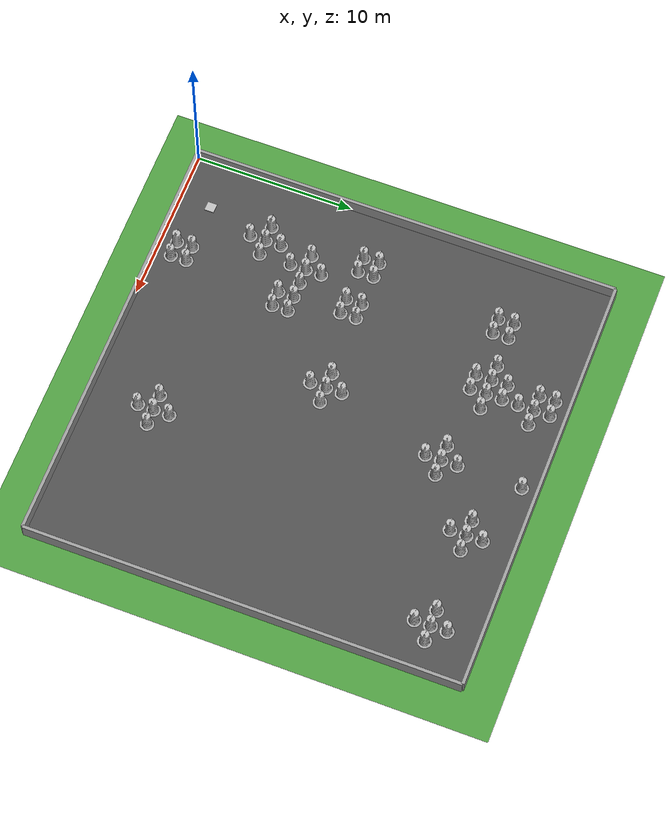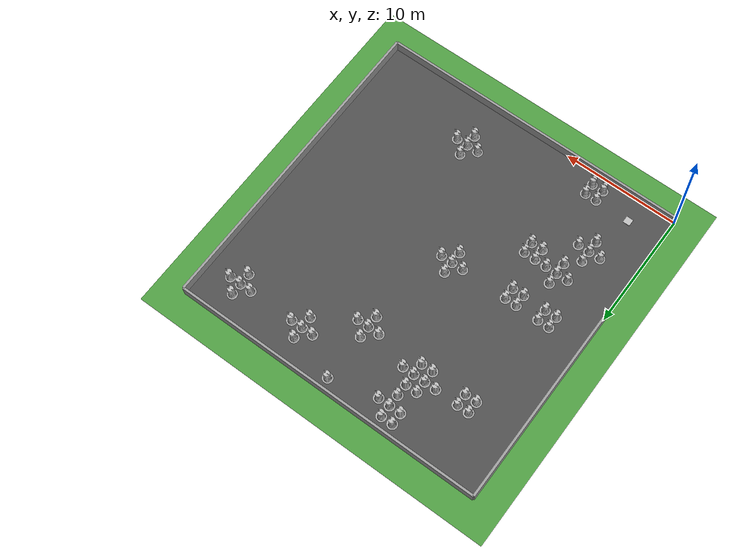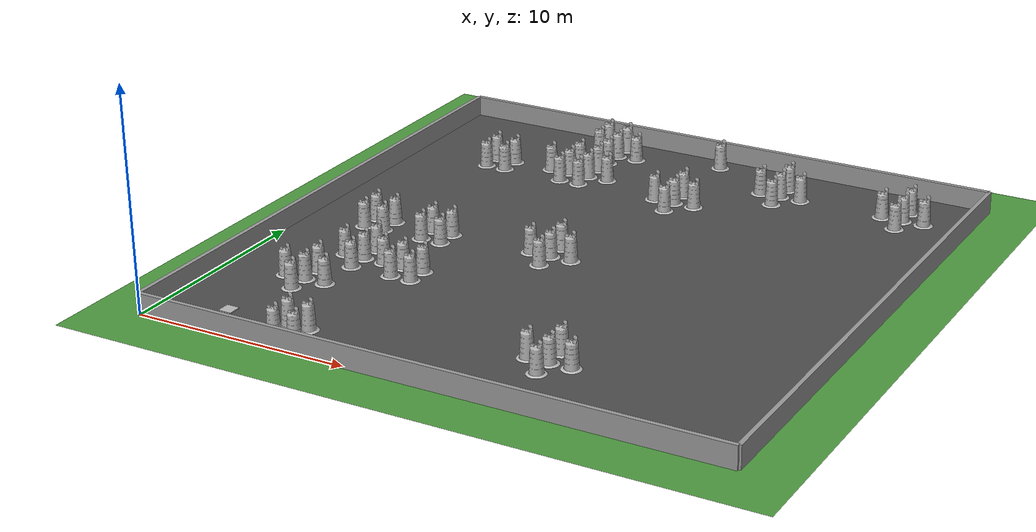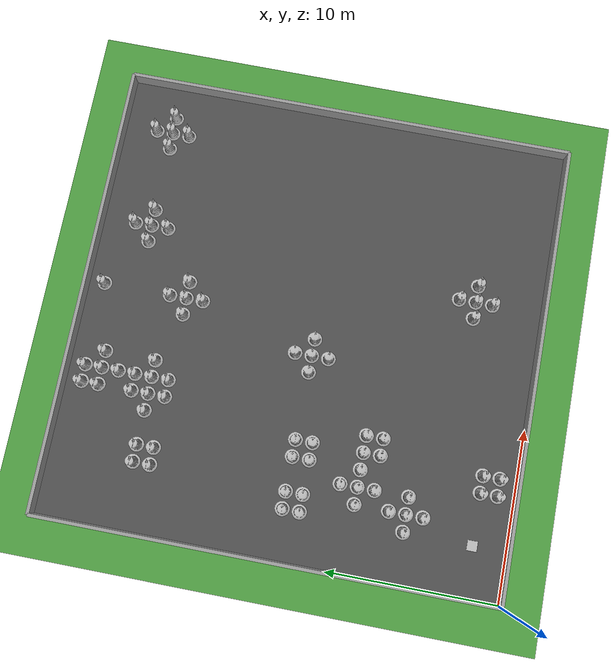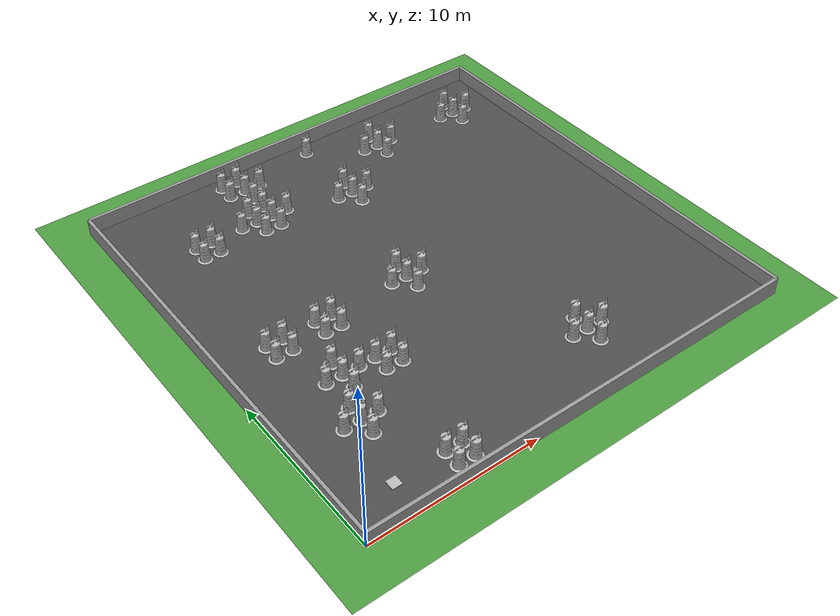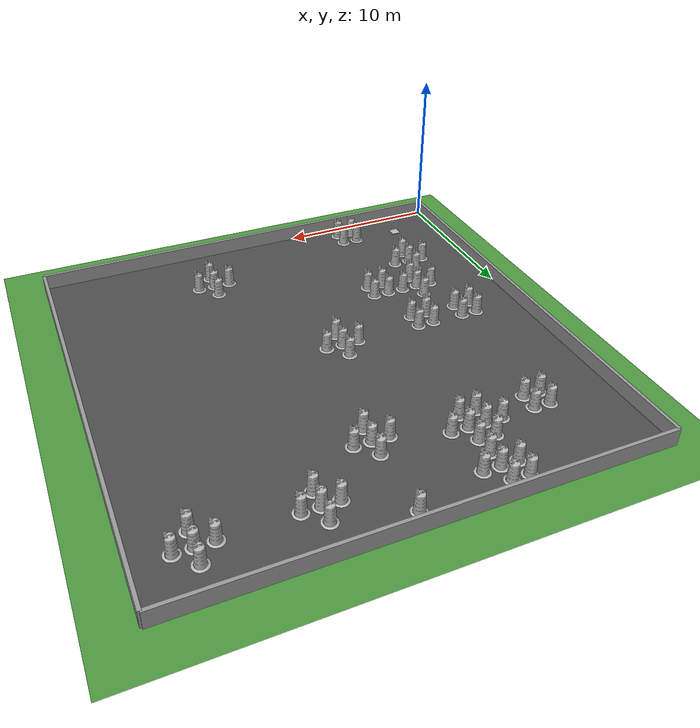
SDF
<sdf version="1.4">
 <world name="default">
  <model name="vrc_driving_terrain">
   <static>1</static>
   <link name="grass_plane">
    <visual name="visual_0">
     <cast_shadows>0</cast_shadows>
     <geometry><plane><normal>0 0 1</normal><size>150 150</size></plane></geometry>
     <material>
      <script>
       <uri>model://vrc_driving_terrain/materials/scripts</uri>
       <uri>model://vrc_driving_terrain/materials/textures</uri>
       <name>vrc/grass</name>
      </script>
     </material>
    </visual>
   </link>
   <pose>0 0 0.01 0 -0 0</pose>
  </model>
  <include><uri>model://ground_plane</uri></include>
  <include><uri>model://sun</uri></include>
  <plugin filename="librotors_gazebo_ros_interface_plugin.so" name="ros_interface_plugin"/>
  <spherical_coordinates>
   <surface_model>EARTH_WGS84</surface_model>
   <latitude_deg>47.3667</latitude_deg>
   <longitude_deg>8.5500</longitude_deg>
   <elevation>500.0</elevation>
   <heading_deg>0</heading_deg>
  </spherical_coordinates>
  <physics type="ode">
   <ode>
    <solver><type>quick</type><iters>1000</iters><sor>1.3</sor></solver>
    <constraints>
     <cfm>0</cfm>
     <erp>0.2</erp>
     <contact_max_correcting_vel>100</contact_max_correcting_vel>
     <contact_surface_layer>0.001</contact_surface_layer>
    </constraints>
   </ode>
   <max_step_size>0.01</max_step_size>
   <real_time_factor>1</real_time_factor>
   <real_time_update_rate>100</real_time_update_rate>
   <gravity>0 0 -9.8</gravity>
  </physics>
  <model name="box_target_green">
   <static>1</static>
   <link name="link">
    <pose>3 2 0 0 0 0</pose>
    <collision name="collision"><geometry><box><size>6 6 2</size></box></geometry></collision>
    <visual name="visual">
     <geometry>
      <mesh><uri>model://box_target_green/meshes/mesh.dae</uri><scale>0.1 0.1 0.1</scale></mesh>
     </geometry>
    </visual>
   </link>
  </model>
  <model name="grey_wall">
   <static>1</static>
   <link name="link">
    <visual name="visual">
     <cast_shadows>0</cast_shadows>
     <geometry><box><size>27 0.2 2</size></box></geometry>
     <material>
      <script>
       <uri>model://grey_wall/materials/scripts</uri>
       <uri>model://grey_wall/materials/textures</uri>
       <name>vrc/grey_wall</name>
      </script>
     </material>
    </visual>
   </link>
   <pose>13.5 0 0 0 0 0</pose>
  </model>
  <model name="grey_wall">
   <static>1</static>
   <link name="link">
    <visual name="visual">
     <cast_shadows>0</cast_shadows>
     <geometry><box><size>27 0.2 2</size></box></geometry>
     <material>
      <script>
       <uri>model://grey_wall/materials/scripts</uri>
       <uri>model://grey_wall/materials/textures</uri>
       <name>vrc/grey_wall</name>
      </script>
     </material>
    </visual>
   </link>
   <pose>0 13.5 0 0 0 1.57079632679</pose>
  </model>
  <model name="grey_wall">
   <static>1</static>
   <link name="link">
    <visual name="visual">
     <cast_shadows>0</cast_shadows>
     <geometry><box><size>27 0.2 2</size></box></geometry>
     <material>
      <script>
       <uri>model://grey_wall/materials/scripts</uri>
       <uri>model://grey_wall/materials/textures</uri>
       <name>vrc/grey_wall</name>
      </script>
     </material>
    </visual>
   </link>
   <pose>27 13.5 0 0 0 -1.57079632679</pose>
  </model>
  <model name="grey_wall">
   <static>1</static>
   <link name="link">
    <visual name="visual">
     <cast_shadows>0</cast_shadows>
     <geometry><box><size>27 0.2 2</size></box></geometry>
     <material>
      <script>
       <uri>model://grey_wall/materials/scripts</uri>
       <uri>model://grey_wall/materials/textures</uri>
       <name>vrc/grey_wall</name>
      </script>
     </material>
    </visual>
   </link>
   <pose>13.5 27 0 0 0 3.14159265359</pose>
  </model>
  <model name="asphalt_plane">
   <static>1</static>
   <link name="link">
    <visual name="visual">
     <cast_shadows>0</cast_shadows>
     <geometry><box><size>27 27 0.1</size></box></geometry>
     <material>
      <script>
       <uri>model://asphalt_plane/materials/scripts</uri>
       <uri>model://asphalt_plane/materials/textures</uri>
       <name>vrc/asphalt</name>
      </script>
     </material>
    </visual>
   </link>
   <pose>13.5 13.5 0 0 0 0</pose>
  </model>
  <model name="Construction Barrel">
   <link name="link">
    <collision name="collision">
     <geometry>
      <mesh><uri>model://construction_barrel/meshes/construction_barrel.dae</uri><scale>1 1 1</scale></mesh>
     </geometry>
    </collision>
    <visual name="visual">
     <geometry><mesh><uri>model://construction_barrel/meshes/construction_barrel.dae</uri></mesh></geometry>
    </visual>
   </link>
   <pose>3 6 0 0 0 0</pose>
   <static>1</static>
  </model>
  <model name="Construction Barrel">
   <link name="link">
    <collision name="collision">
     <geometry>
      <mesh><uri>model://construction_barrel/meshes/construction_barrel.dae</uri><scale>1 1 1</scale></mesh>
     </geometry>
    </collision>
    <visual name="visual">
     <geometry><mesh><uri>model://construction_barrel/meshes/construction_barrel.dae</uri></mesh></geometry>
    </visual>
   </link>
   <pose>3 12 0 0 0 0</pose>
   <static>1</static>
  </model>
  <model name="Construction Barrel">
   <link name="link">
    <collision name="collision">
     <geometry>
      <mesh><uri>model://construction_barrel/meshes/construction_barrel.dae</uri><scale>1 1 1</scale></mesh>
     </geometry>
    </collision>
    <visual name="visual">
     <geometry><mesh><uri>model://construction_barrel/meshes/construction_barrel.dae</uri></mesh></geometry>
    </visual>
   </link>
   <pose>3 13 0 0 0 0</pose>
   <static>1</static>
  </model>
  <model name="Construction Barrel">
   <link name="link">
    <collision name="collision">
     <geometry>
      <mesh><uri>model://construction_barrel/meshes/construction_barrel.dae</uri><scale>1 1 1</scale></mesh>
     </geometry>
    </collision>
    <visual name="visual">
     <geometry><mesh><uri>model://construction_barrel/meshes/construction_barrel.dae</uri></mesh></geometry>
    </visual>
   </link>
   <pose>4 5 0 0 0 0</pose>
   <static>1</static>
  </model>
  <model name="Construction Barrel">
   <link name="link">
    <collision name="collision">
     <geometry>
      <mesh><uri>model://construction_barrel/meshes/construction_barrel.dae</uri><scale>1 1 1</scale></mesh>
     </geometry>
    </collision>
    <visual name="visual">
     <geometry><mesh><uri>model://construction_barrel/meshes/construction_barrel.dae</uri></mesh></geometry>
    </visual>
   </link>
   <pose>4 6 0 0 0 0</pose>
   <static>1</static>
  </model>
  <model name="Construction Barrel">
   <link name="link">
    <collision name="collision">
     <geometry>
      <mesh><uri>model://construction_barrel/meshes/construction_barrel.dae</uri><scale>1 1 1</scale></mesh>
     </geometry>
    </collision>
    <visual name="visual">
     <geometry><mesh><uri>model://construction_barrel/meshes/construction_barrel.dae</uri></mesh></geometry>
    </visual>
   </link>
   <pose>4 7 0 0 0 0</pose>
   <static>1</static>
  </model>
  <model name="Construction Barrel">
   <link name="link">
    <collision name="collision">
     <geometry>
      <mesh><uri>model://construction_barrel/meshes/construction_barrel.dae</uri><scale>1 1 1</scale></mesh>
     </geometry>
    </collision>
    <visual name="visual">
     <geometry><mesh><uri>model://construction_barrel/meshes/construction_barrel.dae</uri></mesh></geometry>
    </visual>
   </link>
   <pose>4 9 0 0 0 0</pose>
   <static>1</static>
  </model>
  <model name="Construction Barrel">
   <link name="link">
    <collision name="collision">
     <geometry>
      <mesh><uri>model://construction_barrel/meshes/construction_barrel.dae</uri><scale>1 1 1</scale></mesh>
     </geometry>
    </collision>
    <visual name="visual">
     <geometry><mesh><uri>model://construction_barrel/meshes/construction_barrel.dae</uri></mesh></geometry>
    </visual>
   </link>
   <pose>4 12 0 0 0 0</pose>
   <static>1</static>
  </model>
  <model name="Construction Barrel">
   <link name="link">
    <collision name="collision">
     <geometry>
      <mesh><uri>model://construction_barrel/meshes/construction_barrel.dae</uri><scale>1 1 1</scale></mesh>
     </geometry>
    </collision>
    <visual name="visual">
     <geometry><mesh><uri>model://construction_barrel/meshes/construction_barrel.dae</uri></mesh></geometry>
    </visual>
   </link>
   <pose>4 13 0 0 0 0</pose>
   <static>1</static>
  </model>
  <model name="Construction Barrel">
   <link name="link">
    <collision name="collision">
     <geometry>
      <mesh><uri>model://construction_barrel/meshes/construction_barrel.dae</uri><scale>1 1 1</scale></mesh>
     </geometry>
    </collision>
    <visual name="visual">
     <geometry><mesh><uri>model://construction_barrel/meshes/construction_barrel.dae</uri></mesh></geometry>
    </visual>
   </link>
   <pose>4 21 0 0 0 0</pose>
   <static>1</static>
  </model>
  <model name="Construction Barrel">
   <link name="link">
    <collision name="collision">
     <geometry>
      <mesh><uri>model://construction_barrel/meshes/construction_barrel.dae</uri><scale>1 1 1</scale></mesh>
     </geometry>
    </collision>
    <visual name="visual">
     <geometry><mesh><uri>model://construction_barrel/meshes/construction_barrel.dae</uri></mesh></geometry>
    </visual>
   </link>
   <pose>4 22 0 0 0 0</pose>
   <static>1</static>
  </model>
  <model name="Construction Barrel">
   <link name="link">
    <collision name="collision">
     <geometry>
      <mesh><uri>model://construction_barrel/meshes/construction_barrel.dae</uri><scale>1 1 1</scale></mesh>
     </geometry>
    </collision>
    <visual name="visual">
     <geometry><mesh><uri>model://construction_barrel/meshes/construction_barrel.dae</uri></mesh></geometry>
    </visual>
   </link>
   <pose>5 6 0 0 0 0</pose>
   <static>1</static>
  </model>
  <model name="Construction Barrel">
   <link name="link">
    <collision name="collision">
     <geometry>
      <mesh><uri>model://construction_barrel/meshes/construction_barrel.dae</uri><scale>1 1 1</scale></mesh>
     </geometry>
    </collision>
    <visual name="visual">
     <geometry><mesh><uri>model://construction_barrel/meshes/construction_barrel.dae</uri></mesh></geometry>
    </visual>
   </link>
   <pose>5 8 0 0 0 0</pose>
   <static>1</static>
  </model>
  <model name="Construction Barrel">
   <link name="link">
    <collision name="collision">
     <geometry>
      <mesh><uri>model://construction_barrel/meshes/construction_barrel.dae</uri><scale>1 1 1</scale></mesh>
     </geometry>
    </collision>
    <visual name="visual">
     <geometry><mesh><uri>model://construction_barrel/meshes/construction_barrel.dae</uri></mesh></geometry>
    </visual>
   </link>
   <pose>5 9 0 0 0 0</pose>
   <static>1</static>
  </model>
  <model name="Construction Barrel">
   <link name="link">
    <collision name="collision">
     <geometry>
      <mesh><uri>model://construction_barrel/meshes/construction_barrel.dae</uri><scale>1 1 1</scale></mesh>
     </geometry>
    </collision>
    <visual name="visual">
     <geometry><mesh><uri>model://construction_barrel/meshes/construction_barrel.dae</uri></mesh></geometry>
    </visual>
   </link>
   <pose>5 10 0 0 0 0</pose>
   <static>1</static>
  </model>
  <model name="Construction Barrel">
   <link name="link">
    <collision name="collision">
     <geometry>
      <mesh><uri>model://construction_barrel/meshes/construction_barrel.dae</uri><scale>1 1 1</scale></mesh>
     </geometry>
    </collision>
    <visual name="visual">
     <geometry><mesh><uri>model://construction_barrel/meshes/construction_barrel.dae</uri></mesh></geometry>
    </visual>
   </link>
   <pose>5 21 0 0 0 0</pose>
   <static>1</static>
  </model>
  <model name="Construction Barrel">
   <link name="link">
    <collision name="collision">
     <geometry>
      <mesh><uri>model://construction_barrel/meshes/construction_barrel.dae</uri><scale>1 1 1</scale></mesh>
     </geometry>
    </collision>
    <visual name="visual">
     <geometry><mesh><uri>model://construction_barrel/meshes/construction_barrel.dae</uri></mesh></geometry>
    </visual>
   </link>
   <pose>5 22 0 0 0 0</pose>
   <static>1</static>
  </model>
  <model name="Construction Barrel">
   <link name="link">
    <collision name="collision">
     <geometry>
      <mesh><uri>model://construction_barrel/meshes/construction_barrel.dae</uri><scale>1 1 1</scale></mesh>
     </geometry>
    </collision>
    <visual name="visual">
     <geometry><mesh><uri>model://construction_barrel/meshes/construction_barrel.dae</uri></mesh></geometry>
    </visual>
   </link>
   <pose>6 1 0 0 0 0</pose>
   <static>1</static>
  </model>
  <model name="Construction Barrel">
   <link name="link">
    <collision name="collision">
     <geometry>
      <mesh><uri>model://construction_barrel/meshes/construction_barrel.dae</uri><scale>1 1 1</scale></mesh>
     </geometry>
    </collision>
    <visual name="visual">
     <geometry><mesh><uri>model://construction_barrel/meshes/construction_barrel.dae</uri></mesh></geometry>
    </visual>
   </link>
   <pose>6 2 0 0 0 0</pose>
   <static>1</static>
  </model>
  <model name="Construction Barrel">
   <link name="link">
    <collision name="collision">
     <geometry>
      <mesh><uri>model://construction_barrel/meshes/construction_barrel.dae</uri><scale>1 1 1</scale></mesh>
     </geometry>
    </collision>
    <visual name="visual">
     <geometry><mesh><uri>model://construction_barrel/meshes/construction_barrel.dae</uri></mesh></geometry>
    </visual>
   </link>
   <pose>6 9 0 0 0 0</pose>
   <static>1</static>
  </model>
  <model name="Construction Barrel">
   <link name="link">
    <collision name="collision">
     <geometry>
      <mesh><uri>model://construction_barrel/meshes/construction_barrel.dae</uri><scale>1 1 1</scale></mesh>
     </geometry>
    </collision>
    <visual name="visual">
     <geometry><mesh><uri>model://construction_barrel/meshes/construction_barrel.dae</uri></mesh></geometry>
    </visual>
   </link>
   <pose>6 12 0 0 0 0</pose>
   <static>1</static>
  </model>
  <model name="Construction Barrel">
   <link name="link">
    <collision name="collision">
     <geometry>
      <mesh><uri>model://construction_barrel/meshes/construction_barrel.dae</uri><scale>1 1 1</scale></mesh>
     </geometry>
    </collision>
    <visual name="visual">
     <geometry><mesh><uri>model://construction_barrel/meshes/construction_barrel.dae</uri></mesh></geometry>
    </visual>
   </link>
   <pose>6 13 0 0 0 0</pose>
   <static>1</static>
  </model>
  <model name="Construction Barrel">
   <link name="link">
    <collision name="collision">
     <geometry>
      <mesh><uri>model://construction_barrel/meshes/construction_barrel.dae</uri><scale>1 1 1</scale></mesh>
     </geometry>
    </collision>
    <visual name="visual">
     <geometry><mesh><uri>model://construction_barrel/meshes/construction_barrel.dae</uri></mesh></geometry>
    </visual>
   </link>
   <pose>7 1 0 0 0 0</pose>
   <static>1</static>
  </model>
  <model name="Construction Barrel">
   <link name="link">
    <collision name="collision">
     <geometry>
      <mesh><uri>model://construction_barrel/meshes/construction_barrel.dae</uri><scale>1 1 1</scale></mesh>
     </geometry>
    </collision>
    <visual name="visual">
     <geometry><mesh><uri>model://construction_barrel/meshes/construction_barrel.dae</uri></mesh></geometry>
    </visual>
   </link>
   <pose>7 2 0 0 0 0</pose>
   <static>1</static>
  </model>
  <model name="Construction Barrel">
   <link name="link">
    <collision name="collision">
     <geometry>
      <mesh><uri>model://construction_barrel/meshes/construction_barrel.dae</uri><scale>1 1 1</scale></mesh>
     </geometry>
    </collision>
    <visual name="visual">
     <geometry><mesh><uri>model://construction_barrel/meshes/construction_barrel.dae</uri></mesh></geometry>
    </visual>
   </link>
   <pose>7 8 0 0 0 0</pose>
   <static>1</static>
  </model>
  <model name="Construction Barrel">
   <link name="link">
    <collision name="collision">
     <geometry>
      <mesh><uri>model://construction_barrel/meshes/construction_barrel.dae</uri><scale>1 1 1</scale></mesh>
     </geometry>
    </collision>
    <visual name="visual">
     <geometry><mesh><uri>model://construction_barrel/meshes/construction_barrel.dae</uri></mesh></geometry>
    </visual>
   </link>
   <pose>7 9 0 0 0 0</pose>
   <static>1</static>
  </model>
  <model name="Construction Barrel">
   <link name="link">
    <collision name="collision">
     <geometry>
      <mesh><uri>model://construction_barrel/meshes/construction_barrel.dae</uri><scale>1 1 1</scale></mesh>
     </geometry>
    </collision>
    <visual name="visual">
     <geometry><mesh><uri>model://construction_barrel/meshes/construction_barrel.dae</uri></mesh></geometry>
    </visual>
   </link>
   <pose>7 12 0 0 0 0</pose>
   <static>1</static>
  </model>
  <model name="Construction Barrel">
   <link name="link">
    <collision name="collision">
     <geometry>
      <mesh><uri>model://construction_barrel/meshes/construction_barrel.dae</uri><scale>1 1 1</scale></mesh>
     </geometry>
    </collision>
    <visual name="visual">
     <geometry><mesh><uri>model://construction_barrel/meshes/construction_barrel.dae</uri></mesh></geometry>
    </visual>
   </link>
   <pose>7 13 0 0 0 0</pose>
   <static>1</static>
  </model>
  <model name="Construction Barrel">
   <link name="link">
    <collision name="collision">
     <geometry>
      <mesh><uri>model://construction_barrel/meshes/construction_barrel.dae</uri><scale>1 1 1</scale></mesh>
     </geometry>
    </collision>
    <visual name="visual">
     <geometry><mesh><uri>model://construction_barrel/meshes/construction_barrel.dae</uri></mesh></geometry>
    </visual>
   </link>
   <pose>7 22 0 0 0 0</pose>
   <static>1</static>
  </model>
  <model name="Construction Barrel">
   <link name="link">
    <collision name="collision">
     <geometry>
      <mesh><uri>model://construction_barrel/meshes/construction_barrel.dae</uri><scale>1 1 1</scale></mesh>
     </geometry>
    </collision>
    <visual name="visual">
     <geometry><mesh><uri>model://construction_barrel/meshes/construction_barrel.dae</uri></mesh></geometry>
    </visual>
   </link>
   <pose>8 8 0 0 0 0</pose>
   <static>1</static>
  </model>
  <model name="Construction Barrel">
   <link name="link">
    <collision name="collision">
     <geometry>
      <mesh><uri>model://construction_barrel/meshes/construction_barrel.dae</uri><scale>1 1 1</scale></mesh>
     </geometry>
    </collision>
    <visual name="visual">
     <geometry><mesh><uri>model://construction_barrel/meshes/construction_barrel.dae</uri></mesh></geometry>
    </visual>
   </link>
   <pose>8 9 0 0 0 0</pose>
   <static>1</static>
  </model>
  <model name="Construction Barrel">
   <link name="link">
    <collision name="collision">
     <geometry>
      <mesh><uri>model://construction_barrel/meshes/construction_barrel.dae</uri><scale>1 1 1</scale></mesh>
     </geometry>
    </collision>
    <visual name="visual">
     <geometry><mesh><uri>model://construction_barrel/meshes/construction_barrel.dae</uri></mesh></geometry>
    </visual>
   </link>
   <pose>8 21 0 0 0 0</pose>
   <static>1</static>
  </model>
  <model name="Construction Barrel">
   <link name="link">
    <collision name="collision">
     <geometry>
      <mesh><uri>model://construction_barrel/meshes/construction_barrel.dae</uri><scale>1 1 1</scale></mesh>
     </geometry>
    </collision>
    <visual name="visual">
     <geometry><mesh><uri>model://construction_barrel/meshes/construction_barrel.dae</uri></mesh></geometry>
    </visual>
   </link>
   <pose>8 22 0 0 0 0</pose>
   <static>1</static>
  </model>
  <model name="Construction Barrel">
   <link name="link">
    <collision name="collision">
     <geometry>
      <mesh><uri>model://construction_barrel/meshes/construction_barrel.dae</uri><scale>1 1 1</scale></mesh>
     </geometry>
    </collision>
    <visual name="visual">
     <geometry><mesh><uri>model://construction_barrel/meshes/construction_barrel.dae</uri></mesh></geometry>
    </visual>
   </link>
   <pose>8 23 0 0 0 0</pose>
   <static>1</static>
  </model>
  <model name="Construction Barrel">
   <link name="link">
    <collision name="collision">
     <geometry>
      <mesh><uri>model://construction_barrel/meshes/construction_barrel.dae</uri><scale>1 1 1</scale></mesh>
     </geometry>
    </collision>
    <visual name="visual">
     <geometry><mesh><uri>model://construction_barrel/meshes/construction_barrel.dae</uri></mesh></geometry>
    </visual>
   </link>
   <pose>8 25 0 0 0 0</pose>
   <static>1</static>
  </model>
  <model name="Construction Barrel">
   <link name="link">
    <collision name="collision">
     <geometry>
      <mesh><uri>model://construction_barrel/meshes/construction_barrel.dae</uri><scale>1 1 1</scale></mesh>
     </geometry>
    </collision>
    <visual name="visual">
     <geometry><mesh><uri>model://construction_barrel/meshes/construction_barrel.dae</uri></mesh></geometry>
    </visual>
   </link>
   <pose>8 26 0 0 0 0</pose>
   <static>1</static>
  </model>
  <model name="Construction Barrel">
   <link name="link">
    <collision name="collision">
     <geometry>
      <mesh><uri>model://construction_barrel/meshes/construction_barrel.dae</uri><scale>1 1 1</scale></mesh>
     </geometry>
    </collision>
    <visual name="visual">
     <geometry><mesh><uri>model://construction_barrel/meshes/construction_barrel.dae</uri></mesh></geometry>
    </visual>
   </link>
   <pose>9 21 0 0 0 0</pose>
   <static>1</static>
  </model>
  <model name="Construction Barrel">
   <link name="link">
    <collision name="collision">
     <geometry>
      <mesh><uri>model://construction_barrel/meshes/construction_barrel.dae</uri><scale>1 1 1</scale></mesh>
     </geometry>
    </collision>
    <visual name="visual">
     <geometry><mesh><uri>model://construction_barrel/meshes/construction_barrel.dae</uri></mesh></geometry>
    </visual>
   </link>
   <pose>9 22 0 0 0 0</pose>
   <static>1</static>
  </model>
  <model name="Construction Barrel">
   <link name="link">
    <collision name="collision">
     <geometry>
      <mesh><uri>model://construction_barrel/meshes/construction_barrel.dae</uri><scale>1 1 1</scale></mesh>
     </geometry>
    </collision>
    <visual name="visual">
     <geometry><mesh><uri>model://construction_barrel/meshes/construction_barrel.dae</uri></mesh></geometry>
    </visual>
   </link>
   <pose>9 23 0 0 0 0</pose>
   <static>1</static>
  </model>
  <model name="Construction Barrel">
   <link name="link">
    <collision name="collision">
     <geometry>
      <mesh><uri>model://construction_barrel/meshes/construction_barrel.dae</uri><scale>1 1 1</scale></mesh>
     </geometry>
    </collision>
    <visual name="visual">
     <geometry><mesh><uri>model://construction_barrel/meshes/construction_barrel.dae</uri></mesh></geometry>
    </visual>
   </link>
   <pose>9 24 0 0 0 0</pose>
   <static>1</static>
  </model>
  <model name="Construction Barrel">
   <link name="link">
    <collision name="collision">
     <geometry>
      <mesh><uri>model://construction_barrel/meshes/construction_barrel.dae</uri><scale>1 1 1</scale></mesh>
     </geometry>
    </collision>
    <visual name="visual">
     <geometry><mesh><uri>model://construction_barrel/meshes/construction_barrel.dae</uri></mesh></geometry>
    </visual>
   </link>
   <pose>9 25 0 0 0 0</pose>
   <static>1</static>
  </model>
  <model name="Construction Barrel">
   <link name="link">
    <collision name="collision">
     <geometry>
      <mesh><uri>model://construction_barrel/meshes/construction_barrel.dae</uri><scale>1 1 1</scale></mesh>
     </geometry>
    </collision>
    <visual name="visual">
     <geometry><mesh><uri>model://construction_barrel/meshes/construction_barrel.dae</uri></mesh></geometry>
    </visual>
   </link>
   <pose>9 26 0 0 0 0</pose>
   <static>1</static>
  </model>
  <model name="Construction Barrel">
   <link name="link">
    <collision name="collision">
     <geometry>
      <mesh><uri>model://construction_barrel/meshes/construction_barrel.dae</uri><scale>1 1 1</scale></mesh>
     </geometry>
    </collision>
    <visual name="visual">
     <geometry><mesh><uri>model://construction_barrel/meshes/construction_barrel.dae</uri></mesh></geometry>
    </visual>
   </link>
   <pose>10 22 0 0 0 0</pose>
   <static>1</static>
  </model>
  <model name="Construction Barrel">
   <link name="link">
    <collision name="collision">
     <geometry>
      <mesh><uri>model://construction_barrel/meshes/construction_barrel.dae</uri><scale>1 1 1</scale></mesh>
     </geometry>
    </collision>
    <visual name="visual">
     <geometry><mesh><uri>model://construction_barrel/meshes/construction_barrel.dae</uri></mesh></geometry>
    </visual>
   </link>
   <pose>10 25 0 0 0 0</pose>
   <static>1</static>
  </model>
  <model name="Construction Barrel">
   <link name="link">
    <collision name="collision">
     <geometry>
      <mesh><uri>model://construction_barrel/meshes/construction_barrel.dae</uri><scale>1 1 1</scale></mesh>
     </geometry>
    </collision>
    <visual name="visual">
     <geometry><mesh><uri>model://construction_barrel/meshes/construction_barrel.dae</uri></mesh></geometry>
    </visual>
   </link>
   <pose>11 13 0 0 0 0</pose>
   <static>1</static>
  </model>
  <model name="Construction Barrel">
   <link name="link">
    <collision name="collision">
     <geometry>
      <mesh><uri>model://construction_barrel/meshes/construction_barrel.dae</uri><scale>1 1 1</scale></mesh>
     </geometry>
    </collision>
    <visual name="visual">
     <geometry><mesh><uri>model://construction_barrel/meshes/construction_barrel.dae</uri></mesh></geometry>
    </visual>
   </link>
   <pose>12 12 0 0 0 0</pose>
   <static>1</static>
  </model>
  <model name="Construction Barrel">
   <link name="link">
    <collision name="collision">
     <geometry>
      <mesh><uri>model://construction_barrel/meshes/construction_barrel.dae</uri><scale>1 1 1</scale></mesh>
     </geometry>
    </collision>
    <visual name="visual">
     <geometry><mesh><uri>model://construction_barrel/meshes/construction_barrel.dae</uri></mesh></geometry>
    </visual>
   </link>
   <pose>12 13 0 0 0 0</pose>
   <static>1</static>
  </model>
  <model name="Construction Barrel">
   <link name="link">
    <collision name="collision">
     <geometry>
      <mesh><uri>model://construction_barrel/meshes/construction_barrel.dae</uri><scale>1 1 1</scale></mesh>
     </geometry>
    </collision>
    <visual name="visual">
     <geometry><mesh><uri>model://construction_barrel/meshes/construction_barrel.dae</uri></mesh></geometry>
    </visual>
   </link>
   <pose>12 14 0 0 0 0</pose>
   <static>1</static>
  </model>
  <model name="Construction Barrel">
   <link name="link">
    <collision name="collision">
     <geometry>
      <mesh><uri>model://construction_barrel/meshes/construction_barrel.dae</uri><scale>1 1 1</scale></mesh>
     </geometry>
    </collision>
    <visual name="visual">
     <geometry><mesh><uri>model://construction_barrel/meshes/construction_barrel.dae</uri></mesh></geometry>
    </visual>
   </link>
   <pose>13 13 0 0 0 0</pose>
   <static>1</static>
  </model>
  <model name="Construction Barrel">
   <link name="link">
    <collision name="collision">
     <geometry>
      <mesh><uri>model://construction_barrel/meshes/construction_barrel.dae</uri><scale>1 1 1</scale></mesh>
     </geometry>
    </collision>
    <visual name="visual">
     <geometry><mesh><uri>model://construction_barrel/meshes/construction_barrel.dae</uri></mesh></geometry>
    </visual>
   </link>
   <pose>13 21 0 0 0 0</pose>
   <static>1</static>
  </model>
  <model name="Construction Barrel">
   <link name="link">
    <collision name="collision">
     <geometry>
      <mesh><uri>model://construction_barrel/meshes/construction_barrel.dae</uri><scale>1 1 1</scale></mesh>
     </geometry>
    </collision>
    <visual name="visual">
     <geometry><mesh><uri>model://construction_barrel/meshes/construction_barrel.dae</uri></mesh></geometry>
    </visual>
   </link>
   <pose>14 20 0 0 0 0</pose>
   <static>1</static>
  </model>
  <model name="Construction Barrel">
   <link name="link">
    <collision name="collision">
     <geometry>
      <mesh><uri>model://construction_barrel/meshes/construction_barrel.dae</uri><scale>1 1 1</scale></mesh>
     </geometry>
    </collision>
    <visual name="visual">
     <geometry><mesh><uri>model://construction_barrel/meshes/construction_barrel.dae</uri></mesh></geometry>
    </visual>
   </link>
   <pose>14 21 0 0 0 0</pose>
   <static>1</static>
  </model>
  <model name="Construction Barrel">
   <link name="link">
    <collision name="collision">
     <geometry>
      <mesh><uri>model://construction_barrel/meshes/construction_barrel.dae</uri><scale>1 1 1</scale></mesh>
     </geometry>
    </collision>
    <visual name="visual">
     <geometry><mesh><uri>model://construction_barrel/meshes/construction_barrel.dae</uri></mesh></geometry>
    </visual>
   </link>
   <pose>14 22 0 0 0 0</pose>
   <static>1</static>
  </model>
  <model name="Construction Barrel">
   <link name="link">
    <collision name="collision">
     <geometry>
      <mesh><uri>model://construction_barrel/meshes/construction_barrel.dae</uri><scale>1 1 1</scale></mesh>
     </geometry>
    </collision>
    <visual name="visual">
     <geometry><mesh><uri>model://construction_barrel/meshes/construction_barrel.dae</uri></mesh></geometry>
    </visual>
   </link>
   <pose>14 26 0 0 0 0</pose>
   <static>1</static>
  </model>
  <model name="Construction Barrel">
   <link name="link">
    <collision name="collision">
     <geometry>
      <mesh><uri>model://construction_barrel/meshes/construction_barrel.dae</uri><scale>1 1 1</scale></mesh>
     </geometry>
    </collision>
    <visual name="visual">
     <geometry><mesh><uri>model://construction_barrel/meshes/construction_barrel.dae</uri></mesh></geometry>
    </visual>
   </link>
   <pose>15 21 0 0 0 0</pose>
   <static>1</static>
  </model>
  <model name="Construction Barrel">
   <link name="link">
    <collision name="collision">
     <geometry>
      <mesh><uri>model://construction_barrel/meshes/construction_barrel.dae</uri><scale>1 1 1</scale></mesh>
     </geometry>
    </collision>
    <visual name="visual">
     <geometry><mesh><uri>model://construction_barrel/meshes/construction_barrel.dae</uri></mesh></geometry>
    </visual>
   </link>
   <pose>16 4 0 0 0 0</pose>
   <static>1</static>
  </model>
  <model name="Construction Barrel">
   <link name="link">
    <collision name="collision">
     <geometry>
      <mesh><uri>model://construction_barrel/meshes/construction_barrel.dae</uri><scale>1 1 1</scale></mesh>
     </geometry>
    </collision>
    <visual name="visual">
     <geometry><mesh><uri>model://construction_barrel/meshes/construction_barrel.dae</uri></mesh></geometry>
    </visual>
   </link>
   <pose>17 3 0 0 0 0</pose>
   <static>1</static>
  </model>
  <model name="Construction Barrel">
   <link name="link">
    <collision name="collision">
     <geometry>
      <mesh><uri>model://construction_barrel/meshes/construction_barrel.dae</uri><scale>1 1 1</scale></mesh>
     </geometry>
    </collision>
    <visual name="visual">
     <geometry><mesh><uri>model://construction_barrel/meshes/construction_barrel.dae</uri></mesh></geometry>
    </visual>
   </link>
   <pose>17 4 0 0 0 0</pose>
   <static>1</static>
  </model>
  <model name="Construction Barrel">
   <link name="link">
    <collision name="collision">
     <geometry>
      <mesh><uri>model://construction_barrel/meshes/construction_barrel.dae</uri><scale>1 1 1</scale></mesh>
     </geometry>
    </collision>
    <visual name="visual">
     <geometry><mesh><uri>model://construction_barrel/meshes/construction_barrel.dae</uri></mesh></geometry>
    </visual>
   </link>
   <pose>17 5 0 0 0 0</pose>
   <static>1</static>
  </model>
  <model name="Construction Barrel">
   <link name="link">
    <collision name="collision">
     <geometry>
      <mesh><uri>model://construction_barrel/meshes/construction_barrel.dae</uri><scale>1 1 1</scale></mesh>
     </geometry>
    </collision>
    <visual name="visual">
     <geometry><mesh><uri>model://construction_barrel/meshes/construction_barrel.dae</uri></mesh></geometry>
    </visual>
   </link>
   <pose>17 24 0 0 0 0</pose>
   <static>1</static>
  </model>
  <model name="Construction Barrel">
   <link name="link">
    <collision name="collision">
     <geometry>
      <mesh><uri>model://construction_barrel/meshes/construction_barrel.dae</uri><scale>1 1 1</scale></mesh>
     </geometry>
    </collision>
    <visual name="visual">
     <geometry><mesh><uri>model://construction_barrel/meshes/construction_barrel.dae</uri></mesh></geometry>
    </visual>
   </link>
   <pose>18 4 0 0 0 0</pose>
   <static>1</static>
  </model>
  <model name="Construction Barrel">
   <link name="link">
    <collision name="collision">
     <geometry>
      <mesh><uri>model://construction_barrel/meshes/construction_barrel.dae</uri><scale>1 1 1</scale></mesh>
     </geometry>
    </collision>
    <visual name="visual">
     <geometry><mesh><uri>model://construction_barrel/meshes/construction_barrel.dae</uri></mesh></geometry>
    </visual>
   </link>
   <pose>18 23 0 0 0 0</pose>
   <static>1</static>
  </model>
  <model name="Construction Barrel">
   <link name="link">
    <collision name="collision">
     <geometry>
      <mesh><uri>model://construction_barrel/meshes/construction_barrel.dae</uri><scale>1 1 1</scale></mesh>
     </geometry>
    </collision>
    <visual name="visual">
     <geometry><mesh><uri>model://construction_barrel/meshes/construction_barrel.dae</uri></mesh></geometry>
    </visual>
   </link>
   <pose>18 24 0 0 0 0</pose>
   <static>1</static>
  </model>
  <model name="Construction Barrel">
   <link name="link">
    <collision name="collision">
     <geometry>
      <mesh><uri>model://construction_barrel/meshes/construction_barrel.dae</uri><scale>1 1 1</scale></mesh>
     </geometry>
    </collision>
    <visual name="visual">
     <geometry><mesh><uri>model://construction_barrel/meshes/construction_barrel.dae</uri></mesh></geometry>
    </visual>
   </link>
   <pose>18 25 0 0 0 0</pose>
   <static>1</static>
  </model>
  <model name="Construction Barrel">
   <link name="link">
    <collision name="collision">
     <geometry>
      <mesh><uri>model://construction_barrel/meshes/construction_barrel.dae</uri><scale>1 1 1</scale></mesh>
     </geometry>
    </collision>
    <visual name="visual">
     <geometry><mesh><uri>model://construction_barrel/meshes/construction_barrel.dae</uri></mesh></geometry>
    </visual>
   </link>
   <pose>19 24 0 0 0 0</pose>
   <static>1</static>
  </model>
  <model name="Construction Barrel">
   <link name="link">
    <collision name="collision">
     <geometry>
      <mesh><uri>model://construction_barrel/meshes/construction_barrel.dae</uri><scale>1 1 1</scale></mesh>
     </geometry>
    </collision>
    <visual name="visual">
     <geometry><mesh><uri>model://construction_barrel/meshes/construction_barrel.dae</uri></mesh></geometry>
    </visual>
   </link>
   <pose>23 24 0 0 0 0</pose>
   <static>1</static>
  </model>
  <model name="Construction Barrel">
   <link name="link">
    <collision name="collision">
     <geometry>
      <mesh><uri>model://construction_barrel/meshes/construction_barrel.dae</uri><scale>1 1 1</scale></mesh>
     </geometry>
    </collision>
    <visual name="visual">
     <geometry><mesh><uri>model://construction_barrel/meshes/construction_barrel.dae</uri></mesh></geometry>
    </visual>
   </link>
   <pose>24 23 0 0 0 0</pose>
   <static>1</static>
  </model>
  <model name="Construction Barrel">
   <link name="link">
    <collision name="collision">
     <geometry>
      <mesh><uri>model://construction_barrel/meshes/construction_barrel.dae</uri><scale>1 1 1</scale></mesh>
     </geometry>
    </collision>
    <visual name="visual">
     <geometry><mesh><uri>model://construction_barrel/meshes/construction_barrel.dae</uri></mesh></geometry>
    </visual>
   </link>
   <pose>24 24 0 0 0 0</pose>
   <static>1</static>
  </model>
  <model name="Construction Barrel">
   <link name="link">
    <collision name="collision">
     <geometry>
      <mesh><uri>model://construction_barrel/meshes/construction_barrel.dae</uri><scale>1 1 1</scale></mesh>
     </geometry>
    </collision>
    <visual name="visual">
     <geometry><mesh><uri>model://construction_barrel/meshes/construction_barrel.dae</uri></mesh></geometry>
    </visual>
   </link>
   <pose>24 25 0 0 0 0</pose>
   <static>1</static>
  </model>
  <model name="Construction Barrel">
   <link name="link">
    <collision name="collision">
     <geometry>
      <mesh><uri>model://construction_barrel/meshes/construction_barrel.dae</uri><scale>1 1 1</scale></mesh>
     </geometry>
    </collision>
    <visual name="visual">
     <geometry><mesh><uri>model://construction_barrel/meshes/construction_barrel.dae</uri></mesh></geometry>
    </visual>
   </link>
   <pose>25 24 0 0 0 0</pose>
   <static>1</static>
  </model>
 </world>
</sdf>
